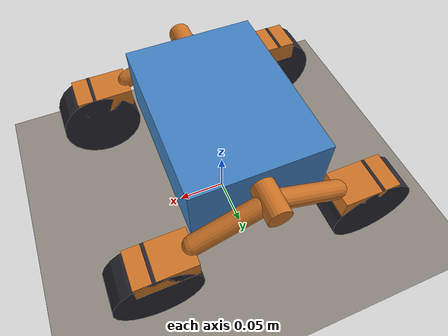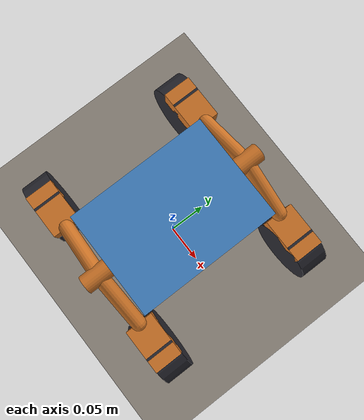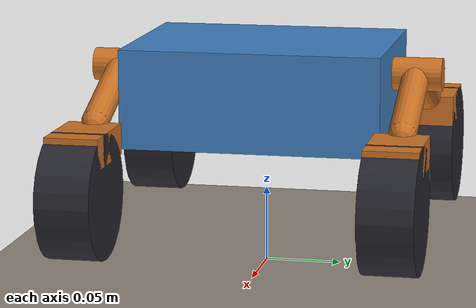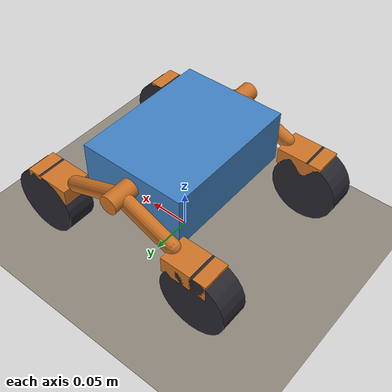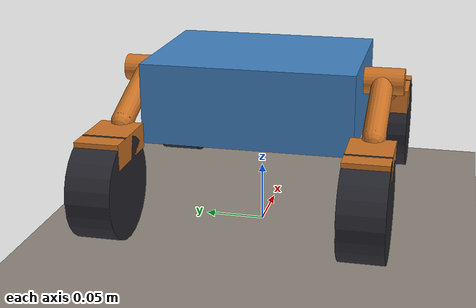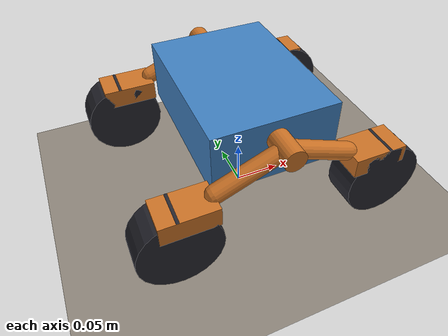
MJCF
<mujoco model="ksrc_swerve_rover">
  <compiler angle="radian" autolimits="true"/>
  <option timestep="0.002" integrator="implicitfast" cone="elliptic"/>

  <default>
    <default class="arm">
      <geom rgba="0.80 0.45 0.15 1" friction="0.7 0.01 0.001" density="1270"/>
    </default>
    <default class="steer">
      <geom rgba="0.30 0.35 0.45 1" mass="0.1000" friction="0.7 0.01 0.001"/>
      <joint type="hinge" axis="0 0 1" range="-1.5708 1.5708"
             damping="0.02" armature="0.002"/>
    </default>
    <default class="tyre">
      <!-- 종방향 마찰은 뒤에서 커스텀 슬립모델이 담당한다. 지금은 표준값. -->
      <geom rgba="0.15 0.15 0.18 1" friction="1.0 0.02 0.002" condim="4"/>
    </default>
    <default class="wheel">
      <joint type="hinge" axis="0 1 0" damping="0.2462" armature="0.0015"/>
    </default>
    <default class="rocker">
      <joint type="hinge" axis="0 1 0" range="-0.4400 0.4400"
             damping="0.05" armature="0.001"/>
    </default>
    <default class="terrain">
      <geom rgba="0.55 0.52 0.48 1" friction="1.0 0.02 0.002" condim="4"/>
    </default>
  </default>

  <worldbody>
    <light pos="0 0 3" dir="0 0 -1" diffuse="0.8 0.8 0.8"/>
    <geom name="ground" type="plane" size="20 20 0.1" class="terrain"/>
    <body name="chassis" pos="0 0 0.08550">
      <freejoint name="root"/>
      <geom name="base" type="box" pos="0 0 0.03250"
            size="0.06350 0.08500 0.03250"
            mass="1.4000" rgba="0.25 0.50 0.75 1"/>
      <site name="imu" pos="0 0 0.03250" size="0.006"/>

    <body name="rocker_l" pos="0 0.10000 0.04500">
      <joint name="rock_l" class="rocker"/>
      <geom class="arm" type="cylinder" zaxis="0 1 0" size="0.011 0.01750"
            mass="0.0800"/>
      <geom class="arm" type="capsule" fromto="0 0 0 0.06700 0 -0.02700" size="0.009"/> <geom class="arm" type="capsule" fromto="0 0 0 -0.06700 0 -0.02700" size="0.009"/>
      <geom class="arm" type="box" pos="0.09463 0 -0.03715" size="0.02763 0.01750 0.01015"/> <geom class="arm" type="box" pos="-0.09463 0 -0.03715" size="0.02763 0.01750 0.01015"/>
      <body name="steer_fl" pos="0.10500 0 -0.04730">
        <joint name="st_fl" class="steer"/>
        <geom class="steer" type="box" size="0.016 0.014 0.016"/>
        <body name="wheel_fl" pos="0.00000 0 -0.02000">
          <joint name="wh_fl" class="wheel"/>
          <geom class="tyre" type="cylinder" zaxis="0 1 0"
                size="0.04050 0.01750" mass="0.2600"/>
        </body>
      </body>
      <body name="steer_rl" pos="-0.10500 0 -0.04730">
        <joint name="st_rl" class="steer"/>
        <geom class="steer" type="box" size="0.016 0.014 0.016"/>
        <body name="wheel_rl" pos="0.00000 0 -0.02000">
          <joint name="wh_rl" class="wheel"/>
          <geom class="tyre" type="cylinder" zaxis="0 1 0"
                size="0.04050 0.01750" mass="0.2600"/>
        </body>
      </body>
    </body>

    <body name="rocker_r" pos="0 -0.10000 0.04500">
      <joint name="rock_r" class="rocker"/>
      <geom class="arm" type="cylinder" zaxis="0 1 0" size="0.011 0.01750"
            mass="0.0800"/>
      <geom class="arm" type="capsule" fromto="0 0 0 0.06700 0 -0.02700" size="0.009"/> <geom class="arm" type="capsule" fromto="0 0 0 -0.06700 0 -0.02700" size="0.009"/>
      <geom class="arm" type="box" pos="0.09463 0 -0.03715" size="0.02763 0.01750 0.01015"/> <geom class="arm" type="box" pos="-0.09463 0 -0.03715" size="0.02763 0.01750 0.01015"/>
      <body name="steer_fr" pos="0.10500 0 -0.04730">
        <joint name="st_fr" class="steer"/>
        <geom class="steer" type="box" size="0.016 0.014 0.016"/>
        <body name="wheel_fr" pos="0.00000 0 -0.02000">
          <joint name="wh_fr" class="wheel"/>
          <geom class="tyre" type="cylinder" zaxis="0 1 0"
                size="0.04050 0.01750" mass="0.2600"/>
        </body>
      </body>
      <body name="steer_rr" pos="-0.10500 0 -0.04730">
        <joint name="st_rr" class="steer"/>
        <geom class="steer" type="box" size="0.016 0.014 0.016"/>
        <body name="wheel_rr" pos="0.00000 0 -0.02000">
          <joint name="wh_rr" class="wheel"/>
          <geom class="tyre" type="cylinder" zaxis="0 1 0"
                size="0.04050 0.01750" mass="0.2600"/>
        </body>
      </body>
    </body>
    </body>
  </worldbody>

  <equality>
    <!-- 중앙 베벨 디퍼렌셜: 좌우 로커 1:1 역방향. 사이드기어가 동일 부품이므로
         가운데 피니언 크기와 무관하게 비는 정확히 1:1 이다. -->
    <joint joint1="rock_l" joint2="rock_r" polycoef="0 -1.0 0 0 0" solimp="0.99 0.999 0.001"/>
  </equality>

  <actuator>
    <position name="a_st_fl" joint="st_fl" kp="12.0" ctrlrange="-1.5708 1.5708" forcerange="-2.0 2.0"/>
    <position name="a_st_rl" joint="st_rl" kp="12.0" ctrlrange="-1.5708 1.5708" forcerange="-2.0 2.0"/>
    <position name="a_st_fr" joint="st_fr" kp="12.0" ctrlrange="-1.5708 1.5708" forcerange="-2.0 2.0"/>
    <position name="a_st_rr" joint="st_rr" kp="12.0" ctrlrange="-1.5708 1.5708" forcerange="-2.0 2.0"/>
    <motor name="a_wh_fl" joint="wh_fl" gear="1.96" ctrlrange="-1 1"/>
    <motor name="a_wh_rl" joint="wh_rl" gear="1.96" ctrlrange="-1 1"/>
    <motor name="a_wh_fr" joint="wh_fr" gear="1.96" ctrlrange="-1 1"/>
    <motor name="a_wh_rr" joint="wh_rr" gear="1.96" ctrlrange="-1 1"/>
  </actuator>

  <sensor>
    <framequat name="s_quat" objtype="site" objname="imu"/>
    <gyro name="s_gyro" site="imu"/>
    <accelerometer name="s_acc" site="imu"/>
    <velocimeter name="s_vel" site="imu"/>
    <jointpos name="s_st_fl" joint="st_fl"/>
    <jointvel name="s_wh_fl" joint="wh_fl"/>
    <jointpos name="s_st_rl" joint="st_rl"/>
    <jointvel name="s_wh_rl" joint="wh_rl"/>
    <jointpos name="s_st_fr" joint="st_fr"/>
    <jointvel name="s_wh_fr" joint="wh_fr"/>
    <jointpos name="s_st_rr" joint="st_rr"/>
    <jointvel name="s_wh_rr" joint="wh_rr"/>
  </sensor>
</mujoco>
